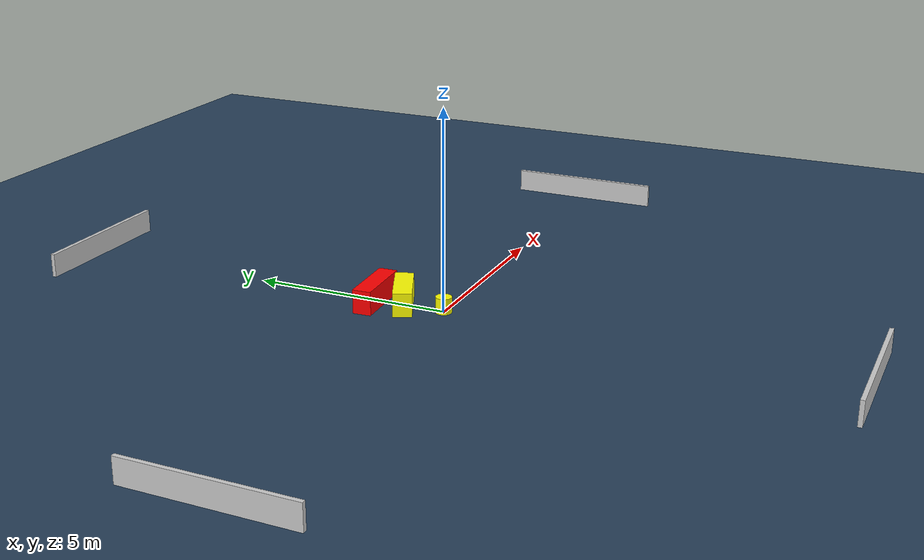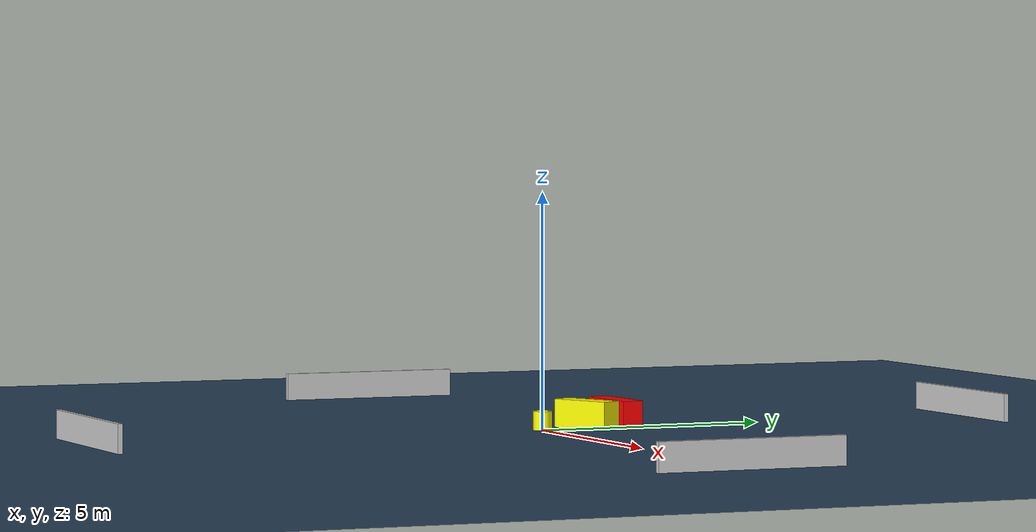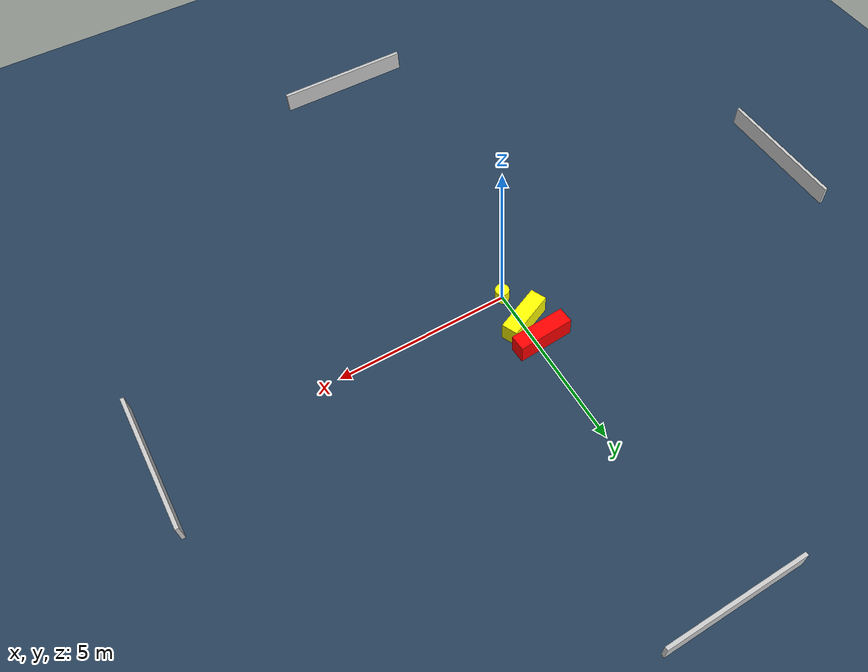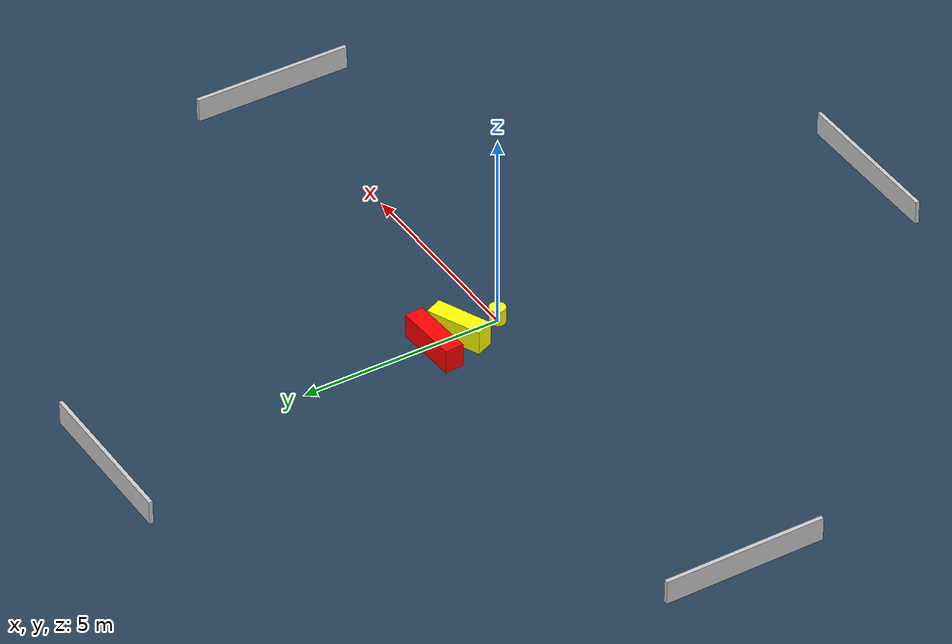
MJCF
<?xml version="1.0" ?>
<mujoco model="generated_environment">
  <option timestep="0.01" integrator="RK4" cone="elliptic"/>
  <default>
    <geom density="1"/>
  </default>
  <asset>
    <texture builtin="gradient" height="3072" name="skybox" rgb1="0.3 0.5 0.7" rgb2="0 0 0" type="skybox" width="512"/>
    <texture builtin="checker" height="300" name="groundplane" rgb1="0.2 0.3 0.4" rgb2="0.1 0.2 0.3" type="2d" width="300"/>
    <material name="groundplane" reflectance="0.2" texrepeat="5 5" texture="groundplane"/>
  </asset>
  <worldbody>
    <light dir="0 0 -1" directional="true" pos="0 0 1.5"/>
    <geom condim="3" friction="0.5 0.005 0.001" material="groundplane" name="floor" pos="0 0 0" size="0 0 0.05" type="plane"/>
    <body name="walls">
      <geom name="wall_1" condim="4" pos="-10.0 0.0 0.3" rgba="0.800000011920929 0.800000011920929 0.800000011920929 1.0" size="0.05 2.0 0.3" type="box"/>
      <geom name="wall_2" condim="4" pos="10.0 0.0 0.3" rgba="0.800000011920929 0.800000011920929 0.800000011920929 1.0" size="0.05 2.0 0.3" type="box"/>
      <geom name="wall_3" condim="4" pos="0.0 -10.0 0.3" rgba="0.800000011920929 0.800000011920929 0.800000011920929 1.0" size="2.0 0.05 0.3" type="box"/>
      <geom name="wall_4" condim="4" pos="0.0 10.0 0.3" rgba="0.800000011920929 0.800000011920929 0.800000011920929 1.0" size="2.0 0.05 0.3" type="box"/>
    </body>
    <body name="robot">
      <joint name="joint_x" type="slide" pos="0 0 0" axis="1 0 0"/>
      <joint name="joint_y" type="slide" pos="0 0 0" axis="0 1 0"/>
      <geom name="robot" type="cylinder" pos="0.0 0.0 0.2" size="0.2 0.2 0.0" mass="5.0" friction="1.0 0.005 0.0001" condim="4" rgba="1.0 1.0 0.0 1.0"/>
    </body>
    <body name="obstacle_1_movable">
      <geom name="obstacle_1_movable" condim="4" pos="-0.056587600537717976 1.0420369422168034 0.3" euler="0 0 203.72265874436985" friction="0.0 0.005 0.001" rgba="1.0 1.0 0.0 1.0" size="0.7016881682606275 0.23259453785121953 0.3" type="box" mass="0.1"/>
      <joint type="free"/>
    </body>
    <body name="obstacle_2_static">
      <geom name="obstacle_2_static" condim="4" pos="-0.15815928127012288 1.7543529312883446 0.3" euler="0 0 93.28362123154729" friction="0.0 0.005 0.001" rgba="1.0 0.0 0.0 1.0" size="0.23246813596399762 0.7971884732459305 0.3" type="box"/>
    </body>
  </worldbody>
  <actuator>
    <motor name="actuator_x" joint="joint_x" gear="1" ctrlrange="-1 1"/>
    <motor name="actuator_y" joint="joint_y" gear="1" ctrlrange="-1 1"/>
  </actuator>
</mujoco>
